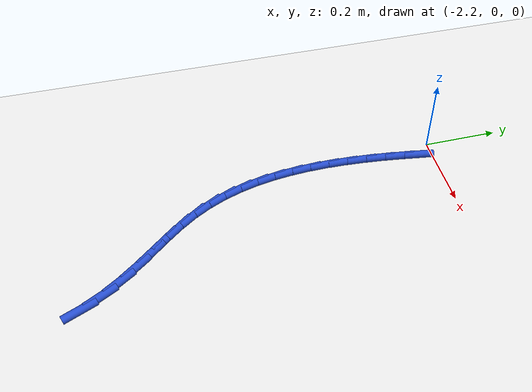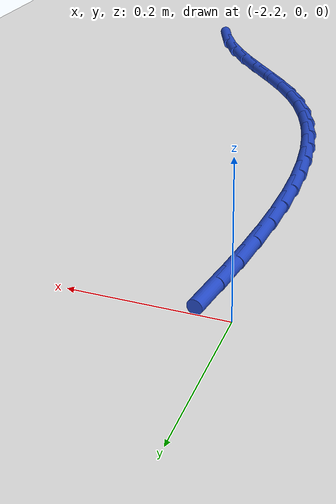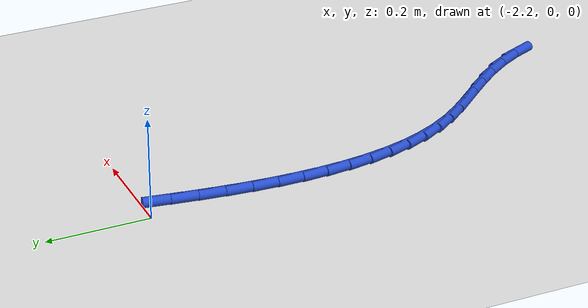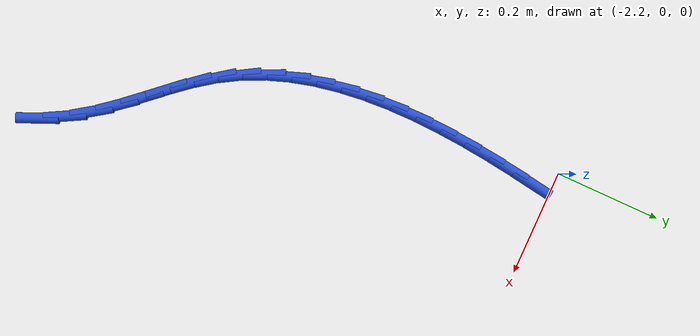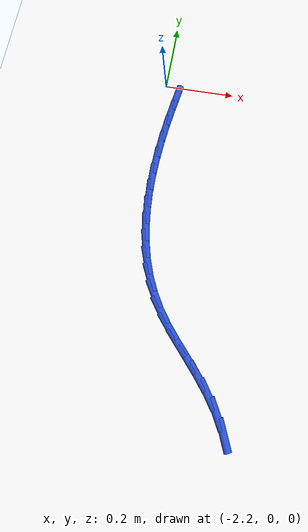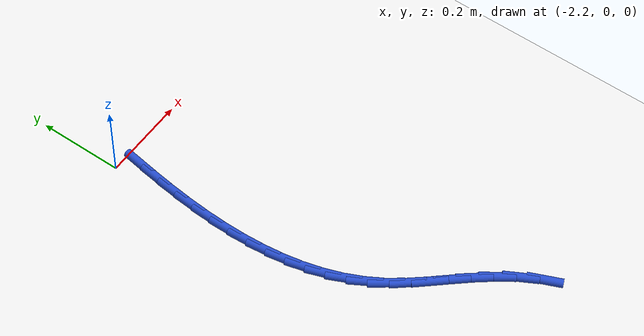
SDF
<sdf version="1.6">
 <world name="default">
  <model name="ground_plane">
   <static>1</static>
   <link name="link">
    <collision name="collision">
     <geometry><plane><normal>0 0 1</normal><size>100 100</size></plane></geometry>
     <surface><friction><ode><mu>100</mu><mu2>50</mu2></ode></friction></surface>
    </collision>
    <visual name="visual">
     <cast_shadows>0</cast_shadows>
     <geometry><plane><normal>0 0 1</normal><size>100 100</size></plane></geometry>
     <material>
      <script><uri>file://media/materials/scripts/gazebo.material</uri><name>Gazebo/WhiteGlow</name></script>
     </material>
    </visual>
   </link>
  </model>
  <model name="line">
   <link name="link_81">
    <pose>-2.1628182332186516 -0.03882310581669494 0.01 0 1.57 1.4204819626322278</pose>
    <collision name="collision">
     <geometry><cylinder><radius>0.01</radius><length>0.08</length></cylinder></geometry>
    </collision>
    <visual name="visual">
     <material>
      <script><name>Gazebo/Blue</name><uri>file://media/materials/scripts/gazebo.material</uri></script>
     </material>
     <geometry><cylinder><radius>0.01</radius><length>0.08</length></cylinder></geometry>
    </visual>
   </link>
   <link name="link_82">
    <pose>-2.1706251836088137 -0.09036883711050575 0.01 0 1.57 1.443077540710903</pose>
    <collision name="collision">
     <geometry><cylinder><radius>0.01</radius><length>0.08</length></cylinder></geometry>
    </collision>
    <visual name="visual">
     <material>
      <script><name>Gazebo/Blue</name><uri>file://media/materials/scripts/gazebo.material</uri></script>
     </material>
     <geometry><cylinder><radius>0.01</radius><length>0.08</length></cylinder></geometry>
    </visual>
   </link>
   <link name="link_83">
    <pose>-2.1772326279218137 -0.14182155062476448 0.01 0 1.57 1.4703705407701344</pose>
    <collision name="collision">
     <geometry><cylinder><radius>0.01</radius><length>0.08</length></cylinder></geometry>
    </collision>
    <visual name="visual">
     <material>
      <script><name>Gazebo/Blue</name><uri>file://media/materials/scripts/gazebo.material</uri></script>
     </material>
     <geometry><cylinder><radius>0.01</radius><length>0.08</length></cylinder></geometry>
    </visual>
   </link>
   <link name="link_84">
    <pose>-2.1823902606366605 -0.19300643475983084 0.01 0 1.57 1.5027626870476931</pose>
    <collision name="collision">
     <geometry><cylinder><radius>0.01</radius><length>0.08</length></cylinder></geometry>
    </collision>
    <visual name="visual">
     <material>
      <script><name>Gazebo/Blue</name><uri>file://media/materials/scripts/gazebo.material</uri></script>
     </material>
     <geometry><cylinder><radius>0.01</radius><length>0.08</length></cylinder></geometry>
    </visual>
   </link>
   <link name="link_85">
    <pose>-2.185847776232366 -0.24374867791606386 0.01 0 1.57 1.5407385641542695</pose>
    <collision name="collision">
     <geometry><cylinder><radius>0.01</radius><length>0.08</length></cylinder></geometry>
    </collision>
    <visual name="visual">
     <material>
      <script><name>Gazebo/Blue</name><uri>file://media/materials/scripts/gazebo.material</uri></script>
     </material>
     <geometry><cylinder><radius>0.01</radius><length>0.08</length></cylinder></geometry>
    </visual>
   </link>
   <link name="link_86">
    <pose>-2.187354869187939 -0.29387346849382245 0.01 0 1.57 -1.5567368501737056</pose>
    <collision name="collision">
     <geometry><cylinder><radius>0.01</radius><length>0.08</length></cylinder></geometry>
    </collision>
    <visual name="visual">
     <material>
      <script><name>Gazebo/Blue</name><uri>file://media/materials/scripts/gazebo.material</uri></script>
     </material>
     <geometry><cylinder><radius>0.01</radius><length>0.08</length></cylinder></geometry>
    </visual>
   </link>
   <link name="link_87">
    <pose>-2.186661233982391 -0.3432059948934664 0.01 0 1.57 -1.5058688065479533</pose>
    <collision name="collision">
     <geometry><cylinder><radius>0.01</radius><length>0.08</length></cylinder></geometry>
    </collision>
    <visual name="visual">
     <material>
      <script><name>Gazebo/Blue</name><uri>file://media/materials/scripts/gazebo.material</uri></script>
     </material>
     <geometry><cylinder><radius>0.01</radius><length>0.08</length></cylinder></geometry>
    </visual>
   </link>
   <link name="link_88">
    <pose>-2.183516565094732 -0.3915714455153526 0.01 0 1.57 -1.4476286558274514</pose>
    <collision name="collision">
     <geometry><cylinder><radius>0.01</radius><length>0.08</length></cylinder></geometry>
    </collision>
    <visual name="visual">
     <material>
      <script><name>Gazebo/Blue</name><uri>file://media/materials/scripts/gazebo.material</uri></script>
     </material>
     <geometry><cylinder><radius>0.01</radius><length>0.08</length></cylinder></geometry>
    </visual>
   </link>
   <link name="link_89">
    <pose>-2.1776705570039723 -0.43879500875984123 0.01 0 1.57 -1.3814507097068995</pose>
    <collision name="collision">
     <geometry><cylinder><radius>0.01</radius><length>0.08</length></cylinder></geometry>
    </collision>
    <visual name="visual">
     <material>
      <script><name>Gazebo/Blue</name><uri>file://media/materials/scripts/gazebo.material</uri></script>
     </material>
     <geometry><cylinder><radius>0.01</radius><length>0.08</length></cylinder></geometry>
    </visual>
   </link>
   <link name="link_90">
    <pose>-2.168872904189123 -0.48470187302729123 0.01 0 1.57 -1.3069280024620165</pose>
    <collision name="collision">
     <geometry><cylinder><radius>0.01</radius><length>0.08</length></cylinder></geometry>
    </collision>
    <visual name="visual">
     <material>
      <script><name>Gazebo/Blue</name><uri>file://media/materials/scripts/gazebo.material</uri></script>
     </material>
     <geometry><cylinder><radius>0.01</radius><length>0.08</length></cylinder></geometry>
    </visual>
   </link>
   <link name="link_91">
    <pose>-2.1568733011291927 -0.5291172267180613 0.01 0 1.57 -1.2239531192920172</pose>
    <collision name="collision">
     <geometry><cylinder><radius>0.01</radius><length>0.08</length></cylinder></geometry>
    </collision>
    <visual name="visual">
     <material>
      <script><name>Gazebo/Blue</name><uri>file://media/materials/scripts/gazebo.material</uri></script>
     </material>
     <geometry><cylinder><radius>0.01</radius><length>0.08</length></cylinder></geometry>
    </visual>
   </link>
   <link name="link_92">
    <pose>-2.141421442303193 -0.5718662582325111 0.01 0 1.57 -1.1328838683861793</pose>
    <collision name="collision">
     <geometry><cylinder><radius>0.01</radius><length>0.08</length></cylinder></geometry>
    </collision>
    <visual name="visual">
     <material>
      <script><name>Gazebo/Blue</name><uri>file://media/materials/scripts/gazebo.material</uri></script>
     </material>
     <geometry><cylinder><radius>0.01</radius><length>0.08</length></cylinder></geometry>
    </visual>
   </link>
   <link name="link_93">
    <pose>-2.122267022190135 -0.6127741559709983 0.01 0 1.57 -1.0346963670038767</pose>
    <collision name="collision">
     <geometry><cylinder><radius>0.01</radius><length>0.08</length></cylinder></geometry>
    </collision>
    <visual name="visual">
     <material>
      <script><name>Gazebo/Blue</name><uri>file://media/materials/scripts/gazebo.material</uri></script>
     </material>
     <geometry><cylinder><radius>0.01</radius><length>0.08</length></cylinder></geometry>
    </visual>
   </link>
   <link name="link_94">
    <pose>-2.0991597352690268 -0.6516661083338819 0.01 0 1.57 -0.9379070388716324</pose>
    <collision name="collision">
     <geometry><cylinder><radius>0.01</radius><length>0.08</length></cylinder></geometry>
    </collision>
    <visual name="visual">
     <material>
      <script><name>Gazebo/Blue</name><uri>file://media/materials/scripts/gazebo.material</uri></script>
     </material>
     <geometry><cylinder><radius>0.01</radius><length>0.08</length></cylinder></geometry>
    </visual>
   </link>
   <link name="link_95">
    <pose>-2.0720997980167613 -0.6885551568833621 0.01 0 1.57 -0.8726098717992692</pose>
    <collision name="collision">
     <geometry><cylinder><radius>0.01</radius><length>0.08</length></cylinder></geometry>
    </collision>
    <visual name="visual">
     <material>
      <script><name>Gazebo/Blue</name><uri>file://media/materials/scripts/gazebo.material</uri></script>
     </material>
     <geometry><cylinder><radius>0.01</radius><length>0.08</length></cylinder></geometry>
    </visual>
   </link>
   <link name="link_96">
    <pose>-2.0421463209145094 -0.7242483516457277 0.01 0 1.57 -0.8450975710616921</pose>
    <collision name="collision">
     <geometry><cylinder><radius>0.01</radius><length>0.08</length></cylinder></geometry>
    </collision>
    <visual name="visual">
     <material>
      <script><name>Gazebo/Blue</name><uri>file://media/materials/scripts/gazebo.material</uri></script>
     </material>
     <geometry><cylinder><radius>0.01</radius><length>0.08</length></cylinder></geometry>
    </visual>
   </link>
   <link name="link_97">
    <pose>-2.010638135342445 -0.7597624905167341 0.01 0 1.57 -0.8532740047405196</pose>
    <collision name="collision">
     <geometry><cylinder><radius>0.01</radius><length>0.08</length></cylinder></geometry>
    </collision>
    <visual name="visual">
     <material>
      <script><name>Gazebo/Blue</name><uri>file://media/materials/scripts/gazebo.material</uri></script>
     </material>
     <geometry><cylinder><radius>0.01</radius><length>0.08</length></cylinder></geometry>
    </visual>
   </link>
   <link name="link_98">
    <pose>-1.9789140743242497 -0.7961143726245173 0.01 0 1.57 -0.8954816821722461</pose>
    <collision name="collision">
     <geometry><cylinder><radius>0.01</radius><length>0.08</length></cylinder></geometry>
    </collision>
    <visual name="visual">
     <material>
      <script><name>Gazebo/Blue</name><uri>file://media/materials/scripts/gazebo.material</uri></script>
     </material>
     <geometry><cylinder><radius>0.01</radius><length>0.08</length></cylinder></geometry>
    </visual>
   </link>
   <link name="link_99">
    <pose>-1.948312970883601 -0.8343207970972112 0.01 0 1.57 -0.9701912912324234</pose>
    <collision name="collision">
     <geometry><cylinder><radius>0.01</radius><length>0.08</length></cylinder></geometry>
    </collision>
    <visual name="visual">
     <material>
      <script><name>Gazebo/Blue</name><uri>file://media/materials/scripts/gazebo.material</uri></script>
     </material>
     <geometry><cylinder><radius>0.01</radius><length>0.08</length></cylinder></geometry>
    </visual>
   </link>
   <link name="link_100">
    <pose>-1.9201736580441806 -0.8753985630629516 0.01 0 1.57 -1.0721176719988483</pose>
    <collision name="collision">
     <geometry><cylinder><radius>0.01</radius><length>0.08</length></cylinder></geometry>
    </collision>
    <visual name="visual">
     <material>
      <script><name>Gazebo/Blue</name><uri>file://media/materials/scripts/gazebo.material</uri></script>
     </material>
     <geometry><cylinder><radius>0.01</radius><length>0.08</length></cylinder></geometry>
    </visual>
   </link>
   <link name="link_101">
    <pose>-1.895739116626965 -0.9202665000149297 0.01 0 1.57 -1.1648297558481633</pose>
    <collision name="collision">
     <geometry><cylinder><radius>0.01</radius><length>0.08</length></cylinder></geometry>
    </collision>
    <visual name="visual">
     <material>
      <script><name>Gazebo/Blue</name><uri>file://media/materials/scripts/gazebo.material</uri></script>
     </material>
     <geometry><cylinder><radius>0.01</radius><length>0.08</length></cylinder></geometry>
    </visual>
   </link>
  </model>
 </world>
</sdf>
